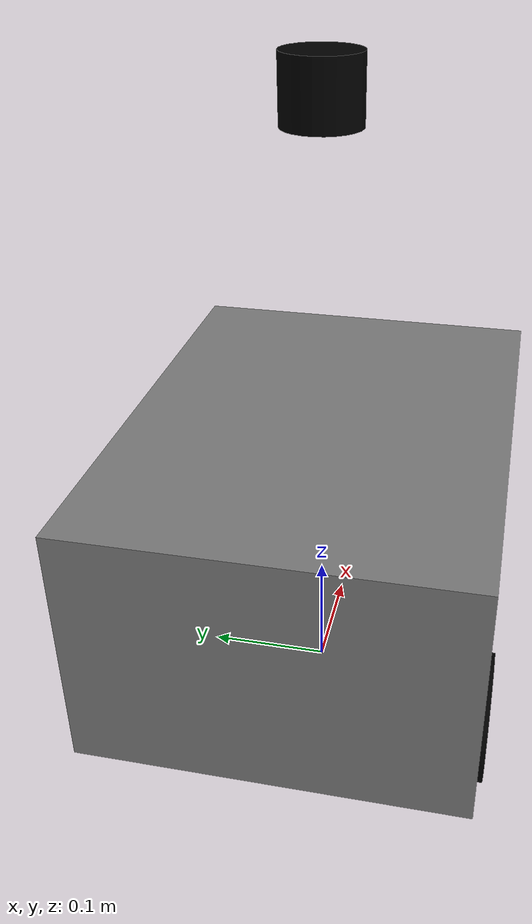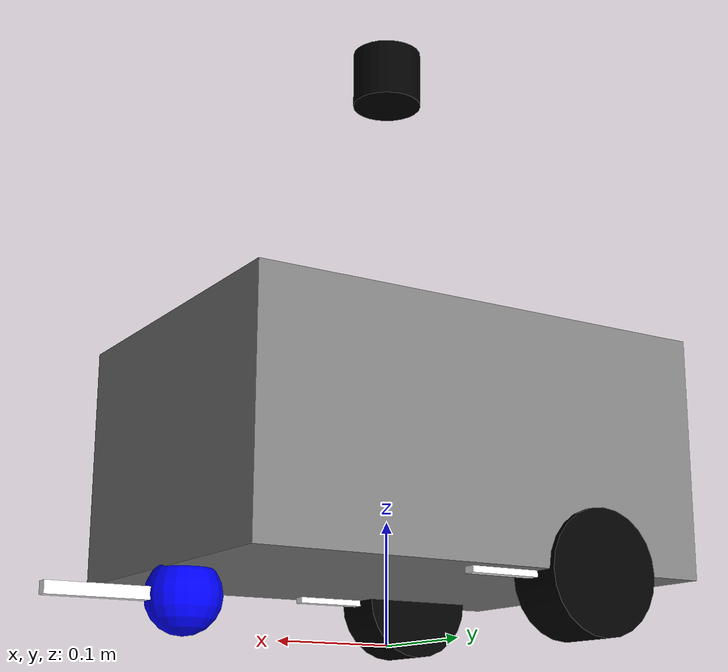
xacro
<?xml version="1.0"?>
<robot name="my_box_robot" xmlns:xacro="http://ros.org/wiki/xacro">

  <!-- Materiales -->
  <material name="gray">
    <color rgba="0.5 0.5 0.5 1.0"/>
  </material>
  <material name="black">
    <color rgba="0.0 0.0 0.0 1.0"/>
  </material>
  <material name="blue">
    <color rgba="0.0 0.0 1.0 1.0"/>
  </material>
  <material name="white">
    <color rgba="1 1 1 1"/>
  </material>

  <!-- Base del robot (elevada) -->
  <link name="base_link">
    <visual>
      <origin xyz="0 0 0.15" rpy="0 0 0"/>
      <geometry>
        <box size="0.4 0.3 0.2"/>
      </geometry>
      <material name="gray"/>
    </visual>
    <collision>
      <origin xyz="0 0 0.15" rpy="0 0 0"/>
      <geometry>
        <box size="0.4 0.3 0.2"/>
      </geometry>
    </collision>
    <inertial>
      <mass value="5.0"/>
      <origin xyz="0 0 0.15" rpy="0 0 0"/>
      <inertia ixx="0.1" iyy="0.1" izz="0.1" ixy="0.0" ixz="0.0" iyz="0.0"/>
    </inertial>
  </link>

    <gazebo reference="base_link">
        <material>Gazebo/Red</material>
    </gazebo>

  <!-- Rueda izquierda -->
  <link name="left_wheel">
    <visual>
      <origin xyz="0 0 0" rpy="0 0 0"/>
      <geometry>
        <cylinder length="0.05" radius="0.05"/>
      </geometry>
      <material name="black"/>
    </visual>
    <collision>
      <origin xyz="0 0 0" rpy="0 0 0"/>
      <geometry>
        <cylinder length="0.05" radius="0.05"/>
      </geometry>
    </collision>
    <inertial>
      <mass value="0.2"/>
      <origin xyz="0 0 0" rpy="0 0 0"/>
      <inertia ixx="0.001" iyy="0.001" izz="0.001" ixy="0.0" ixz="0.0" iyz="0.0"/>
    </inertial>
  </link>

    <gazebo reference="left_wheel">
        <material>Gazebo/Black</material>
    </gazebo>

  <!-- Rueda derecha -->
  <link name="right_wheel">
    <visual>
      <origin xyz="0 0 0" rpy="0 0 0"/>
      <geometry>
        <cylinder length="0.05" radius="0.05"/>
      </geometry>
      <material name="black"/>
    </visual>
    <collision>
      <origin xyz="0 0 0" rpy="0 0 0"/>
      <geometry>
        <cylinder length="0.05" radius="0.05"/>
      </geometry>
    </collision>
    <inertial>
      <mass value="0.2"/>
      <origin xyz="0 0 0" rpy="0 0 0"/>
      <inertia ixx="0.001" iyy="0.001" izz="0.001" ixy="0.0" ixz="0.0" iyz="0.0"/>
    </inertial>
  </link>

  <gazebo reference="right_wheel">
    <material>Gazebo/Black</material>
  </gazebo>

  <!-- Rueda caster frontal -->
  <link name="caster_wheel">
    <visual>
      <origin xyz="0 0 0" rpy="0 0 0"/>
      <geometry>
        <sphere radius="0.03"/>
      </geometry>
      <material name="blue"/>
    </visual>
    <collision>
      <origin xyz="0 0 0" rpy="0 0 0"/>
      <geometry>
        <sphere radius="0.03"/>
      </geometry>
    </collision>
    <inertial>
      <mass value="0.1"/>
      <origin xyz="0 0 0" rpy="0 0 0"/>
      <inertia ixx="0.0001" iyy="0.0001" izz="0.0001" ixy="0.0" ixz="0.0" iyz="0.0"/>
    </inertial>
  </link>

  <gazebo reference="caster_wheel">
    <material>Gazebo/Blue</material>
  </gazebo>

  <!-- Articulación rueda izquierda -->
  <joint name="left_wheel_joint" type="continuous">
    <parent link="base_link"/>
    <child link="left_wheel"/>
    <origin xyz="-0.1 0.13 0.05" rpy="1.5708 0 0"/>
    <axis xyz="0 0 1"/>
    <limit effort="1.0" velocity="10.0"/>
    <dynamics damping="0.1"/>
  </joint>

  <!-- Articulación rueda derecha -->
  <joint name="right_wheel_joint" type="continuous">
    <parent link="base_link"/>
    <child link="right_wheel"/>
    <origin xyz="-0.1 -0.13 0.05" rpy="1.5708 0 0"/>
    <axis xyz="0 0 1"/>
    <limit effort="1.0" velocity="10.0"/>
    <dynamics damping="0.1"/>
  </joint>

  <!-- Articulación rueda caster -->
  <joint name="caster_wheel_joint" type="fixed">
    <parent link="base_link"/>
    <child link="caster_wheel"/>
    <origin xyz="0.18 0 0.03" rpy="0 0 0"/>
  </joint>

<link name="left_marker">
  <visual>
    <origin xyz="0.06 0 0" rpy="0 0 0"/>
    <geometry>
      <box size="0.1 0.01 0.01"/>
    </geometry>
    <material name="white"/>
  </visual>
</link>

<joint name="left_marker_joint" type="fixed">
  <parent link="left_wheel"/>
  <child link="left_marker"/>
  <origin xyz="0 0 0" rpy="0 0 0"/>
</joint>

<link name="right_marker">
  <visual>
    <origin xyz="0.06 0 0" rpy="0 0 0"/>
    <geometry>
      <box size="0.1 0.01 0.01"/>
    </geometry>
    <material name="white"/>
  </visual>
</link>

<joint name="right_marker_joint" type="fixed">
  <parent link="right_wheel"/>
  <child link="right_marker"/>
  <origin xyz="0 0 0" rpy="0 0 0"/>
</joint>

<link name="caster_marker">
  <visual>
    <origin xyz="0.06 0 0" rpy="0 0 0"/>
    <geometry>
      <box size="0.1 0.01 0.01"/>
    </geometry>
    <material name="white"/>
  </visual>
</link>

<joint name="caster_marker_joint" type="fixed">
  <parent link="caster_wheel"/>
  <child link="caster_marker"/>
  <origin xyz="0 0 0" rpy="0 0 0"/>
</joint>

  <gazebo>
  <plugin name="diff_drive_plugin" filename="libdiff_drive_plugin.so">
    <wheel_radius>0.05</wheel_radius>
    <wheel_separation>0.26</wheel_separation>
  </plugin>
</gazebo>

  <!-- Sensor LIDAR (Hokuyo simulado) -->
  <link name="lidar_link">
    <visual>
      <origin xyz="0 0 0" rpy="0 0 0"/>
      <geometry>
        <cylinder radius="0.03" length="0.05"/>
      </geometry>
      <material name="black"/>
    </visual>
    <collision>
      <origin xyz="0 0 0" rpy="0 0 0"/>
      <geometry>
        <cylinder radius="0.03" length="0.05"/>
      </geometry>
    </collision>
    <inertial>
      <mass value="0.1"/>
      <origin xyz="0 0 0" rpy="0 0 0"/>
      <inertia ixx="0.00001" iyy="0.00001" izz="0.00001" ixy="0" ixz="0" iyz="0"/>
    </inertial>
  </link>

  <joint name="lidar_joint" type="fixed">
    <parent link="base_link"/>
    <child link="lidar_link"/>
    <origin xyz="0 0 0.5" rpy="0 0 0"/>  <!-- Ajusta altura -->
  </joint>

  <gazebo reference="lidar_link">
    <sensor name="lidar_sensor" type="ray">
      <update_rate>10</update_rate>
      <pose>0 0 0 0 0 0</pose>
      <ray>
        <scan>
          <horizontal>
            <samples>720</samples>
            <resolution>1</resolution>
            <min_angle>-1.57</min_angle>
            <max_angle>1.57</max_angle>
          </horizontal>
        </scan>
        <range>
          <min>0.12</min>
          <max>3.5</max>
          <resolution>0.01</resolution>
        </range>
        <noise>
          <type>gaussian</type>
          <mean>0.0</mean>
          <stddev>0.01</stddev>
        </noise>
      </ray>
      <plugin name="gazebo_ros_laser_controller" filename="libgazebo_ros_ray_sensor.so">
        <ros>
          <remapping>~/out:=scan</remapping>
        </ros>
        <output_type>sensor_msgs/LaserScan</output_type>
        <frame_name>lidar_link</frame_name>
      </plugin>
    </sensor>
  </gazebo>

</robot>
